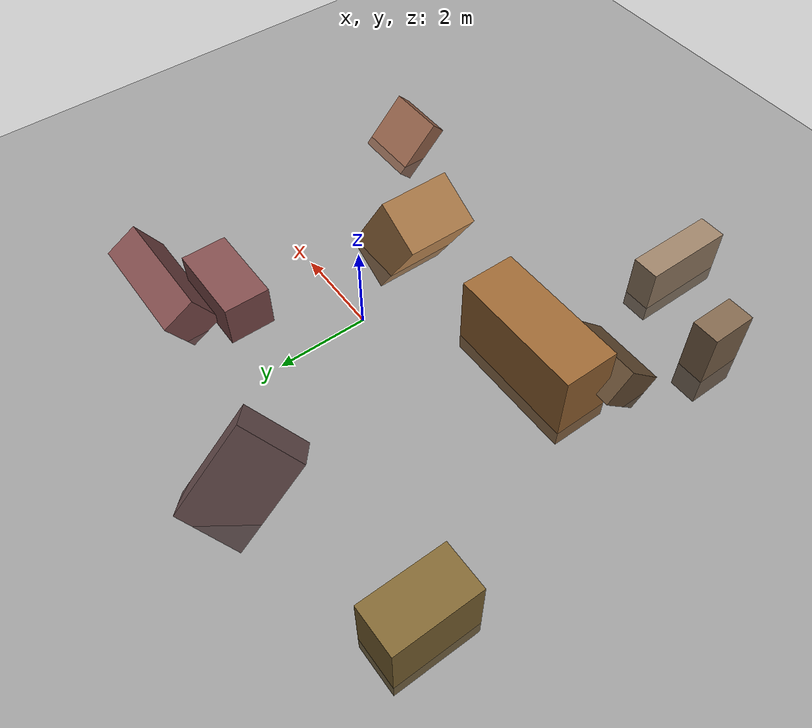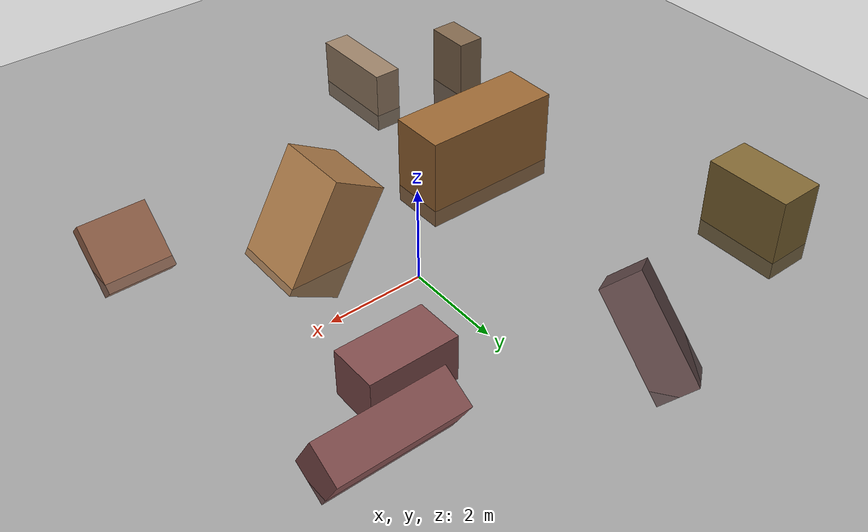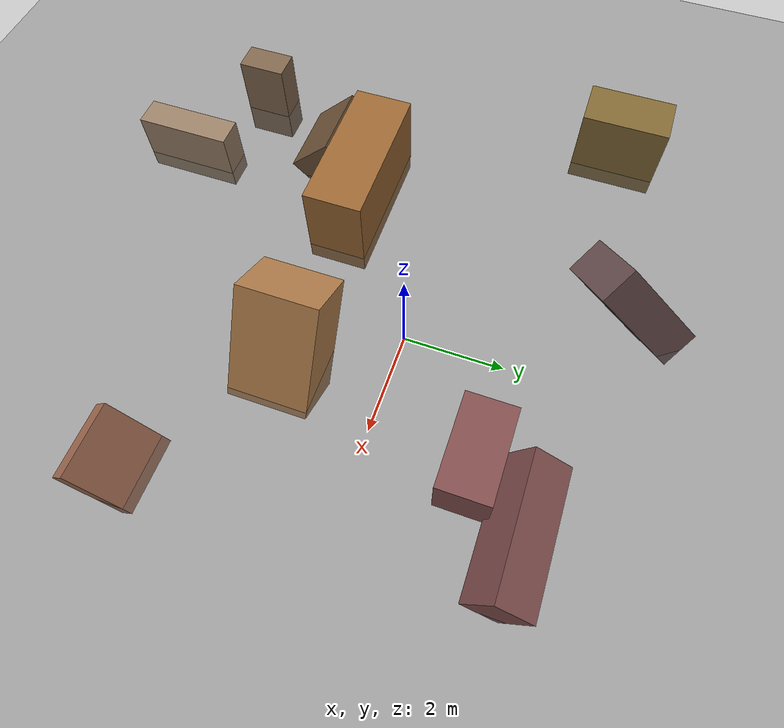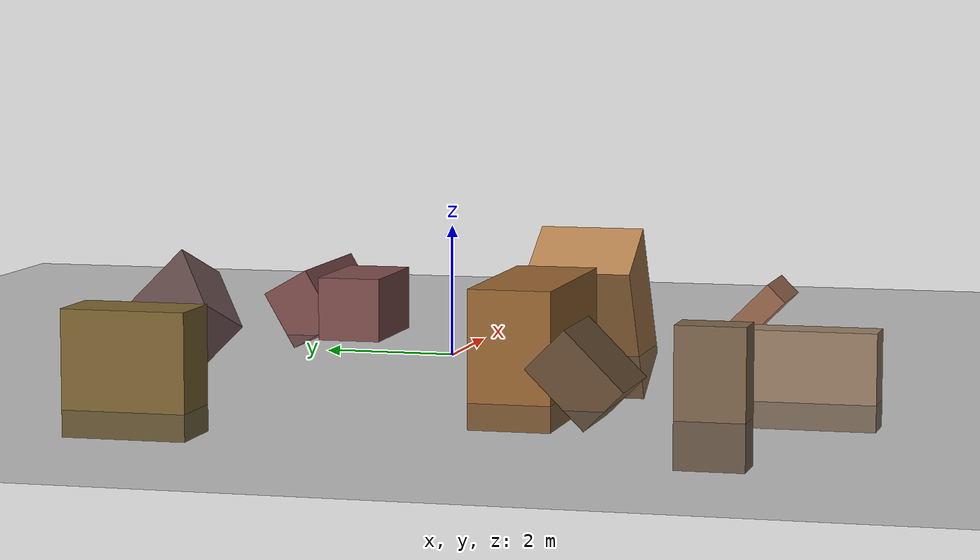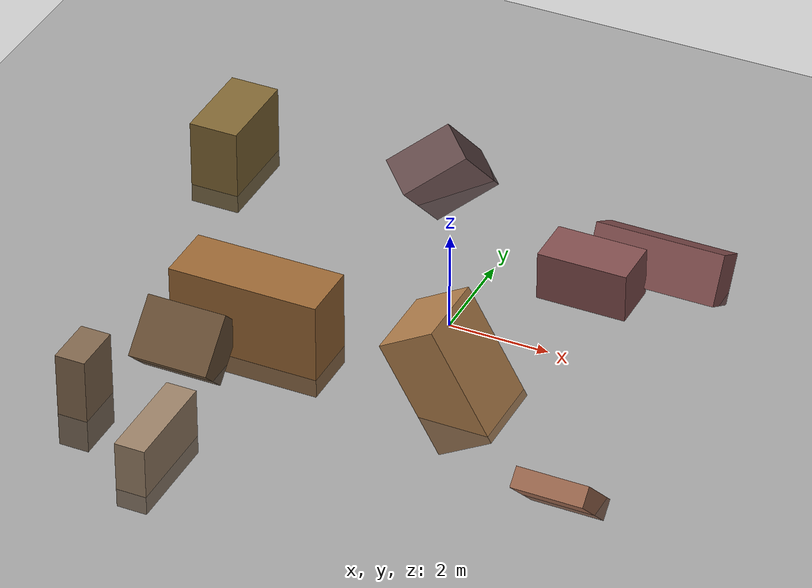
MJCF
<mujoco model="rocky_terrain_scene">
    <compiler angle="radian" inertiafromgeom="true"/>
    <option timestep="0.002" gravity="0 0 -9.81"/>

    <!-- World -->
    <worldbody>
        <light name="sunlight" pos="5 5 5" dir="-1 -1 -1" diffuse="1 1 1" specular="0.5 0.5 0.5" ambient="0.5 0.5 0.5"/>

        <!-- Ground Plane -->
        <geom name="ground_plane" type="plane" size="50 50 0.1" rgba="0.3 0.3 0.3 1"/>

        <!-- Rocky Terrain: Many randomly placed and rotated boxes -->
        <body name="rocky_terrain">
            <!-- Generate many rocks -->
            <geom name="rock1" type="box" size="1 0.5 0.3" pos="-5 -5 0.3" quat="0.707 0 0.707 0" rgba="0.5 0.4 0.3 1"/>
            <geom name="rock2" type="box" size="0.8 0.6 0.4" pos="-4 -3 0.4" quat="0.923 0.382 0 0" rgba="0.4 0.3 0.2 1"/>
            <geom name="rock3" type="box" size="1 0.7 0.3" pos="-3 -6 0.3" quat="0.5 0.5 0.5 0.5" rgba="0.6 0.5 0.4 1"/>
            <geom name="rock4" type="box" size="0.9 0.5 0.5" pos="2 2 0.5" quat="0.707 0.707 0 0" rgba="0.5 0.3 0.3 1"/>
            <geom name="rock5" type="box" size="1.2 0.8 0.6" pos="1 -2 0.6" quat="0.866 0 0.5 0" rgba="0.7 0.5 0.3 1"/>
            <geom name="rock6" type="box" size="1.1 0.7 0.4" pos="-2 4 0.4" quat="0.5 0.5 0.707 0" rgba="0.4 0.3 0.3 1"/>
            <geom name="rock7" type="box" size="0.7 0.7 0.2" pos="4 -4 0.2" quat="0.382 0.923 0 0" rgba="0.6 0.4 0.3 1"/>
            <geom name="rock8" type="box" size="0.9 0.9 0.5" pos="-6 3 0.5" quat="0.707 0 0.707 0" rgba="0.5 0.4 0.2 1"/>
            <geom name="rock9" type="box" size="1.3 0.5 0.4" pos="3 3 0.4" quat="0.866 0.5 0 0" rgba="0.5 0.3 0.3 1"/>
            <geom name="rock10" type="box" size="1.5 1.0 0.6" pos="-3 -2 0.6" quat="0.707 0.707 0 0" rgba="0.6 0.4 0.2 1"/>
        </body>
    </worldbody>
</mujoco>
